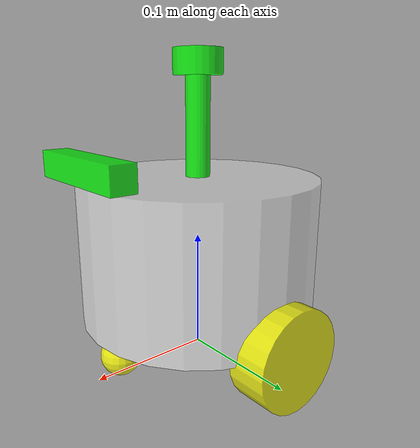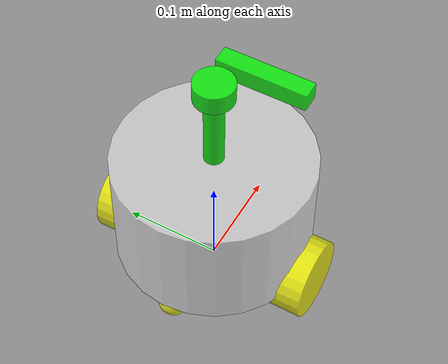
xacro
<?xml version="1.0"?>
<robot xmlns:xacro="http://www.ros.org/wiki/xacro" name="Guobot">
    <xacro:include filename="$(find demo_cpp_slam)/urdf/Guobot/common_inertia.urdf.xacro"/>
    <xacro:include filename="$(find demo_cpp_slam)/urdf/Guobot/base_link.urdf.xacro"/>
    <!--sensor -->
    <xacro:include filename="$(find demo_cpp_slam)/urdf/Guobot/sensor/camera.urdf.xacro"/>
    <xacro:include filename="$(find demo_cpp_slam)/urdf/Guobot/sensor/laser.urdf.xacro"/>
    <xacro:include filename="$(find demo_cpp_slam)/urdf/Guobot/sensor/imu.urdf.xacro"/>
    <!-- actuator-->
     <xacro:include filename="$(find demo_cpp_slam)/urdf/Guobot/actuator/wheel.urdf.xacro"/>
     <xacro:include filename="$(find demo_cpp_slam)/urdf/Guobot/actuator/caster.urdf.xacro"/>
    <!-- plugins-->
    <xacro:include filename="$(find demo_cpp_slam)/urdf/Guobot/plugins/gazebo_control_plugin.xacro"/>
    <xacro:include filename="$(find demo_cpp_slam)/urdf/Guobot/plugins/gazebo_sensor_plugin.xacro"/>
    <xacro:include filename="$(find demo_cpp_slam)/urdf/Guobot/Guobot.ros2_control.xacro"/>
     <!-- execute main body-->
    <xacro:base_xacro length="0.12" radius="0.1"/>
    <!-- execute sensors-->
    <xacro:laser_xacro xyz="0.0 0.0 0.10"/>
    <xacro:imu_xacro xyz="0.0 0.0 0.02"/>
    <xacro:camera_xacro xyz="0.10 0.0 0.075"/>
    <!-- execute actuator-->
    <xacro:wheel_xacro wheel_name = "left" xyz = "0 0.10 -0.06"/>
    <xacro:wheel_xacro wheel_name = "right" xyz = "0 -0.1 -0.06"/>
    <xacro:caster_xacro caster_name = "front" xyz = "0.08 0.0 -0.076"/>
    <xacro:caster_xacro caster_name = "back" xyz = "-0.08 0.0 -0.076"/>
    <!-- execute plugins-->
    <xacro:gazebo_sensor_plugin />
    <xacro:Guobot_ros2_control />
</robot>

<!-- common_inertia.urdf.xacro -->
<robot xmlns:xacro="http://www.ros.org/wiki/xacro" name="Guonbot">
    <!-- box_inertia-->
    <xacro:macro name = "box_inertia" params = "m w h d">
        <inertial>
            <mass value="${m}"/>
            <inertia ixx="${(m/12) * (h*h+d*d)}" ixy="0.0" ixz="0.0" iyy="${(m/12)*(w*w+d*d)}" iyz="0.0" izz="${(m/12)*(w*w+h*h)}"/>
        </inertial>
    </xacro:macro>
    <!--cylinder inertia -->
    <xacro:macro name = "cylinder_inertia" params = "m r h">
        <inertial>
            <mass value="${m}"/>
            <inertia ixx="${(m/12) * (3*r*r+h*h)}" ixy="0.0" ixz="0.0" iyy="${(m/12)*(3*r*r+h*h)}" iyz="0.0" izz="${(m/2)*(r*r)}"/>
        </inertial>
    </xacro:macro>
    <!--sphere inertia -->
    <xacro:macro name = "sphere_inertia" params = "m r">
        <inertial>
            <mass value="${m}"/>
            <inertia ixx="${(2/5) * m * (r*r)}" ixy="0.0" ixz="0.0" iyy="${(2/5) * m * (r*r)}" iyz="0.0" izz="${(2/5) * m * (r*r)}"/>
        </inertial>
    </xacro:macro>
</robot>

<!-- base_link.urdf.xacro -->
<robot xmlns:xacro="http://www.ros.org/wiki/xacro" name="Guobot">
    <xacro:include filename="$(find demo_cpp_slam)/urdf/Guobot/common_inertia.urdf.xacro"/>
    <xacro:macro name = "base_xacro" params = "length radius">
        <link name="base_link">
            <visual>
                <origin xyz="0.0 0.0 0.0" rpy="0.0 0.0 0.0"/>
                <geometry>
                    <cylinder radius="${radius}" length="${length}"/>
                </geometry>
                <material name="white">
                    <color rgba="1.0 1.0 1.0 0.5"/>
                </material>
            </visual>
            <collision>
                <origin xyz="0.0 0.0 0.0" rpy="0.0 0.0 0.0"/>
                <geometry>
                    <cylinder radius="${radius}" length="${length}"/>
                </geometry>
                <material name="white">
                    <color rgba="1.0 1.0 1.0 0.5"/>
                </material>
            </collision>

            <xacro:cylinder_inertia m = "1.0" r = "${radius}" h = "${length}"/>
        </link>
        <link name="base_footprint"/>
        <joint name="base_joint" type="fixed">
            <parent link="base_footprint"/>
            <child link="base_link"/>
            <origin xyz="0 0 ${length/2.0+0.032-0.001}" rpy = "0 0 0"/>
        </joint>
    </xacro:macro>
</robot>

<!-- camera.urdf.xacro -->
<robot xmlns:xacro="http://www.ros.org/wiki/xacro" name="Guoname">
    <xacro:include filename="$(find demo_cpp_slam)/urdf/Guobot/common_inertia.urdf.xacro"/>
    <xacro:macro name = "camera_xacro" params = "xyz">
        <link name="camera_link">
            <visual>
                <origin xyz="0.0 0.0 0.0" rpy="0.0 0.0 0.0"/>
                <geometry>
                    <box size="0.02 0.10 0.02"/>
                </geometry>
                <material name="green">
                    <color rgba="0.0 1.0 0.0 0.8"/>
                </material>
            </visual>
            <collision>
                <origin xyz="0.0 0.0 0.0" rpy="0.0 0.0 0.0"/>
                <geometry>
                    <box size="0.02 0.10 0.02"/>
                </geometry>
                <material name="green">
                    <color rgba="0.0 1.0 0.0 0.8"/>
                </material>
            </collision>
            <gazebo reference = "laser_link">
                <material>
                    Gazebo/Yellow
                </material>
            </gazebo>
            <xacro:box_inertia m = "0.45" w = "0.02" h = "0.02" d = "0.10"/>
        </link>
        <link name="camera_optical_link"/>

        <joint name="camera_joint" type="fixed">
            <parent link="base_link"/>
            <child link="camera_link"/>
            <origin xyz="${xyz}"/>
        </joint>

         <joint name = "camera_optical_joint" type = "fixed">
            <parent link="camera_link"/>
            <child link="camera_optical_link"/>
            <origin xyz="0 0 0" rpy="${-pi/2} 0.0 ${-pi/2}"/>
        </joint>
    </xacro:macro>
    <gazebo reference = "camera_link">
        <material>
            Gazebo/Green
        </material>
    </gazebo>
</robot>

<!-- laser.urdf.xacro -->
<robot xmlns:xacro="http://www.ros.org/wiki/xacro" name="Guobot">
    <xacro:include filename="$(find demo_cpp_slam)/urdf/Guobot/common_inertia.urdf.xacro"/>
    <!-- 雷达支撑杆-->
    <xacro:macro name = "laser_xacro" params = "xyz">
        <link name="laser_cylinder_link">
            <!-- 外观-->
            <visual>
                <origin xyz="0.0 0.0 0.0" rpy="0.0 0.0 0.0"/>
                <geometry>
                    <cylinder radius="0.01" length="0.10"/>
                </geometry>
                <material name="green">
                    <color rgba="0.0 1.0 0.0 0.8"/>
                </material>
            </visual>
            <!-- 碰撞-->
            <collision>
                <geometry>
                    <cylinder radius="0.01" length="0.10"/>
                </geometry>
                <material name="green">
                    <color rgba="0.0 1.0 0.0 0.8"/>
                </material>
            </collision>
            <xacro:cylinder_inertia m = "0.05" r = "0.01" h = "0.10"/>
        </link>

        <joint name="laser_cylinde_joint" type="fixed">
            <parent link="base_link"/>
            <child link="laser_cylinder_link"/>
            <origin xyz="${xyz}"/>
        </joint>
        <!-- 雷达-->
        <link name="laser_link">
            <visual>
                <origin xyz="0.0 0.0 0.0" rpy="0.0 0.0 0.0"/>
                <geometry>
                    <cylinder radius="0.02" length="0.02"/>
                </geometry>
                <material name="green">
                    <color rgba="0.0 1.0 0.0 0.8"/>
                </material>
            </visual>
            <collision>
                <origin xyz="0.0 0.0 0.0" rpy="0.0 0.0 0.0"/>
                <geometry>
                    <cylinder radius="0.02" length="0.02"/>
                </geometry>
                <material name="green">
                    <color rgba="0.0 1.0 0.0 0.8"/>
                </material>
            </collision>

            <xacro:cylinder_inertia m = "0.15" r = "0.02" h = "0.02"/>
        </link>
        <joint name="laser_joint" type="fixed">
            <parent link="laser_cylinder_link"/>
            <child link="laser_link"/>
            <origin xyz="0.0 0.0 0.05"/>
        </joint>

    </xacro:macro>
    <!-- gazebo外观-->
    <gazebo reference = "laser_link">
        <material>
            Gazebo/Black
        </material>
    </gazebo>
    <!-- gazebo外观-->
    <gazebo reference = "laser_cylinder_link">
        <material>
            Gazebo/Black
        </material>
    </gazebo>
</robot>

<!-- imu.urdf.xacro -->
<robot xmlns:xacro="http://www.ros.org/wiki/xacro" name="Guobot">
    <xacro:include filename="$(find demo_cpp_slam)/urdf/Guobot/common_inertia.urdf.xacro"/>
    <xacro:macro name = "imu_xacro" params = "xyz">
        <link name="imu_link">
            <visual>
                <origin xyz="0.0 0.0 0.0" rpy="0.0 0.0 0.0"/>
                <geometry>
                    <box size="0.02 0.02 0.02"/>
                </geometry>
                <material name="black">
                    <color rgba="0.0 0.0 0.0 0.8"/>
                </material>
            </visual>
            <collision>
                <origin xyz="0.0 0.0 0.0" rpy="0.0 0.0 0.0"/>
                <geometry>
                    <box size="0.02 0.02 0.02"/>
                </geometry>
                <material name="black">
                    <color rgba="0.0 0.0 0.0 0.8"/>
                </material>
            </collision>
            <xacro:box_inertia m = "0.1" w = "0.02" h = "0.02" d = "0.02"/>
        </link>
        <joint name="imu_joint" type="fixed">
            <parent link="base_link"/>
            <child link="imu_link"/>
            <origin xyz="${xyz}"/>
        </joint>
    </xacro:macro>
    <gazebo reference = "imu_link">
        <material>
            Gazebo/Blue
        </material>
    </gazebo>
</robot>

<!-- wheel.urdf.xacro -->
<robot xmlns:xacro="http://www.ros.org/wiki/xacro" name="Guobot">
    <xacro:include filename="$(find demo_cpp_slam)/urdf/Guobot/common_inertia.urdf.xacro"/>
    <xacro:macro name = "wheel_xacro" params = "wheel_name xyz">
        <link name="${wheel_name}_wheel_link">
            <visual>
                <origin xyz="0.0 0.0 0.0" rpy="1.57079 0.0 0.0"/>
                <geometry>
                    <cylinder radius="0.04" length="0.032"/>
                </geometry>
                <material name="yellow">
                    <color rgba="1.0 1.0 0.0 0.8"/>
                </material>
            </visual>
            <collision>
                <origin xyz="0.0 0.0 0.0" rpy="1.57079 0.0 0.0"/>
                <geometry>
                    <cylinder radius="0.04" length="0.032"/>
                </geometry>
                <material name="yellow">
                    <color rgba="1.0 1.0 0.0 0.8"/>
                </material>
            </collision>
            <xacro:cylinder_inertia m = "0.2" r = "0.04" h = "0.032"/>
        </link>
        <joint name="${wheel_name}_wheel_joint" type="continuous">
            <parent link="base_link"/>
            <child link="${wheel_name}_wheel_link"/>
            <origin xyz="${xyz}"/>
            <axis xyz="0.0 1 0.0"/>
        </joint>
        <gazebo reference = "${wheel_name}_wheel_link">
            <material>
                Gazebo/Yellow
            </material>
            <mu1 value = "20.0"/>
            <mu2 value = "20.0"/>
            <kp value = "1000000000.0"/>
            <kd value = "1.0"/>
        </gazebo>
    </xacro:macro>
</robot>

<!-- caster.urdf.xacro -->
<robot xmlns:xacro="http://www.ros.org/wiki/xacro" name="Guobot">
    <xacro:include filename="$(find demo_cpp_slam)/urdf/Guobot/common_inertia.urdf.xacro"/>
    <xacro:macro name = "caster_xacro" params = "caster_name xyz">
        <link name="${caster_name}_link">
            <visual>
                <origin xyz="0.0 0.0 0.0" rpy="0.0 0.0 0.0"/>
                <geometry>
                    <sphere radius="0.016"/>
                </geometry>
                <material name="yellow">
                    <color rgba="1 1 0 0.8"/>
                </material>
            </visual>
            <collision>
                <origin xyz="0.0 0.0 0.0" rpy="0.0 0.0 0.0"/>
                <geometry>
                    <sphere radius="0.016"/>
                </geometry>
                <material name="yellow">
                    <color rgba="1 1 0 0.8"/>
                </material>
            </collision>
            <xacro:sphere_inertia m = "0.25" r = "0.016"/>
        </link>
        <joint name="${caster_name}_joint" type="fixed">
            <parent link="base_link"/>
            <child link="${caster_name}_link"/>
            <origin xyz="${xyz}"/>
            <axis xyz="0.0 0.0 0.0"/>
        </joint>
        <gazebo reference = "${caster_name}_link">
            <material>
                Gazebo/Yellow
            </material>
            <mu1 value = "0.0"/>
            <mu2 value = "0.0"/>
            <kp value = "1000000000.0"/>
            <kd value = "1.0"/>
        </gazebo>
    </xacro:macro>
</robot>
